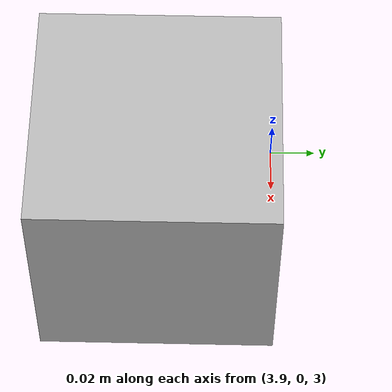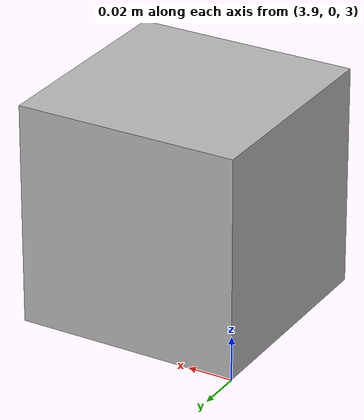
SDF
<?xml version="1.0" ?>
<sdf version="1.6">
  <world name="sensors">
    <physics name="1ms" type="ignored">
      <max_step_size>0.001</max_step_size>
      <real_time_factor>1.0</real_time_factor>
    </physics>
    <plugin
      filename="ignition-gazebo-physics-system"
      name="ignition::gazebo::systems::Physics">
    </plugin>
    <plugin
      filename="ignition-gazebo-air-pressure-system"
      name="ignition::gazebo::systems::AirPressure">
    </plugin>
    <plugin
      filename="ignition-gazebo-altimeter-system"
      name="ignition::gazebo::systems::Altimeter">
    </plugin>
    <plugin
      filename="ignition-gazebo-imu-system"
      name="ignition::gazebo::systems::Imu">
    </plugin>
    <plugin
      filename="ignition-gazebo-magnetometer-system"
      name="ignition::gazebo::systems::Magnetometer">
    </plugin>
    <plugin
      filename="ignition-gazebo-navsat-system"
      name="ignition::gazebo::systems::NavSat">
    </plugin>
    <plugin
      filename="ignition-gazebo-user-commands-system"
      name="ignition::gazebo::systems::UserCommands">
    </plugin>
    <plugin
      filename="ignition-gazebo-scene-broadcaster-system"
      name="ignition::gazebo::systems::SceneBroadcaster">
    </plugin>

    <light type="directional" name="sun">
      <cast_shadows>true</cast_shadows>
      <pose>0 0 10 0 0 0</pose>
      <diffuse>0.8 0.8 0.8 1</diffuse>
      <specular>0.2 0.2 0.2 1</specular>
      <attenuation>
        <range>1000</range>
        <constant>0.9</constant>
        <linear>0.01</linear>
        <quadratic>0.001</quadratic>
      </attenuation>
      <direction>-0.5 0.1 -0.9</direction>
    </light>

    <model name="ground_plane">
      <static>true</static>
      <link name="link">
        <collision name="collision">
          <geometry>
            <plane>
              <normal>0 0 1</normal>
              <size>100 100</size>
            </plane>
          </geometry>
        </collision>
        <visual name="visual">
          <geometry>
            <plane>
              <normal>0 0 1</normal>
              <size>100 100</size>
            </plane>
          </geometry>
          <material>
            <ambient>0.8 0.8 0.8 1</ambient>
            <diffuse>0.8 0.8 0.8 1</diffuse>
            <specular>0.8 0.8 0.8 1</specular>
          </material>
        </visual>
      </link>
    </model>

    <model name="sensors_box">
      <pose>4 0 3.0 0 0.0 3.14</pose>
      <link name="link">
        <pose>0.05 0.05 0.05 0 0 0</pose>
        <inertial>
          <mass>0.1</mass>
          <inertia>
            <ixx>0.000166667</ixx>
            <iyy>0.000166667</iyy>
            <izz>0.000166667</izz>
          </inertia>
        </inertial>
        <collision name="collision">
          <geometry>
            <box>
              <size>0.1 0.1 0.1</size>
            </box>
          </geometry>
        </collision>
        <visual name="visual">
          <geometry>
            <box>
              <size>0.1 0.1 0.1</size>
            </box>
          </geometry>
        </visual>
        <sensor name="altimeter" type="altimeter">
          <always_on>1</always_on>
          <update_rate>30</update_rate>
          <visualize>true</visualize>
          <topic>altimeter</topic>
          <enable_metrics>true</enable_metrics>
          <altimeter>
            <vertical_position>
              <noise type="gaussian">
                <mean>0.1</mean>
                <stddev>0.2</stddev>
              </noise>
            </vertical_position>
            <vertical_velocity>
              <noise type="gaussian">
                <mean>0.2</mean>
                <stddev>0.1</stddev>
              </noise>
            </vertical_velocity>
          </altimeter>
        </sensor>
        <sensor name="air_pressure" type="air_pressure">
          <always_on>1</always_on>
          <update_rate>30</update_rate>
          <visualize>true</visualize>
          <topic>air_pressure</topic>
          <enable_metrics>true</enable_metrics>
          <air_pressure>
            <reference_altitude>123</reference_altitude>
            <pressure>
              <noise type="gaussian">
                <mean>0.2</mean>
                <stddev>0.1</stddev>
              </noise>
            </pressure>
          </air_pressure>
        </sensor>

        <sensor name="navsat" type="navsat">
          <always_on>1</always_on>
          <update_rate>1</update_rate>
          <visualize>true</visualize>
          <topic>navsat</topic>
        </sensor>

        <sensor name="imu" type="imu">
          <always_on>1</always_on>
          <update_rate>100</update_rate>
          <visualize>true</visualize>
          <topic>imu</topic>
          <enable_metrics>true</enable_metrics>
        </sensor>

        <sensor name="magnetometer" type="magnetometer">
          <always_on>1</always_on>
          <update_rate>100</update_rate>
          <visualize>true</visualize>
          <topic>magnetometer</topic>
          <enable_metrics>true</enable_metrics>
          <magnetometer>
            <x>
              <noise type="gaussian">
                <mean>0.0</mean>
                <stddev>0.1</stddev>
              </noise>
            </x>
            <y>
              <noise type="gaussian">
                <mean>0.0</mean>
                <stddev>0.1</stddev>
              </noise>
	    </y>
            <z>
              <noise type="gaussian">
                <mean>0.0</mean>
                <stddev>0.1</stddev>
              </noise>
            </z>
          </magnetometer>
        </sensor>
      </link>
    </model>

  </world>
</sdf>
